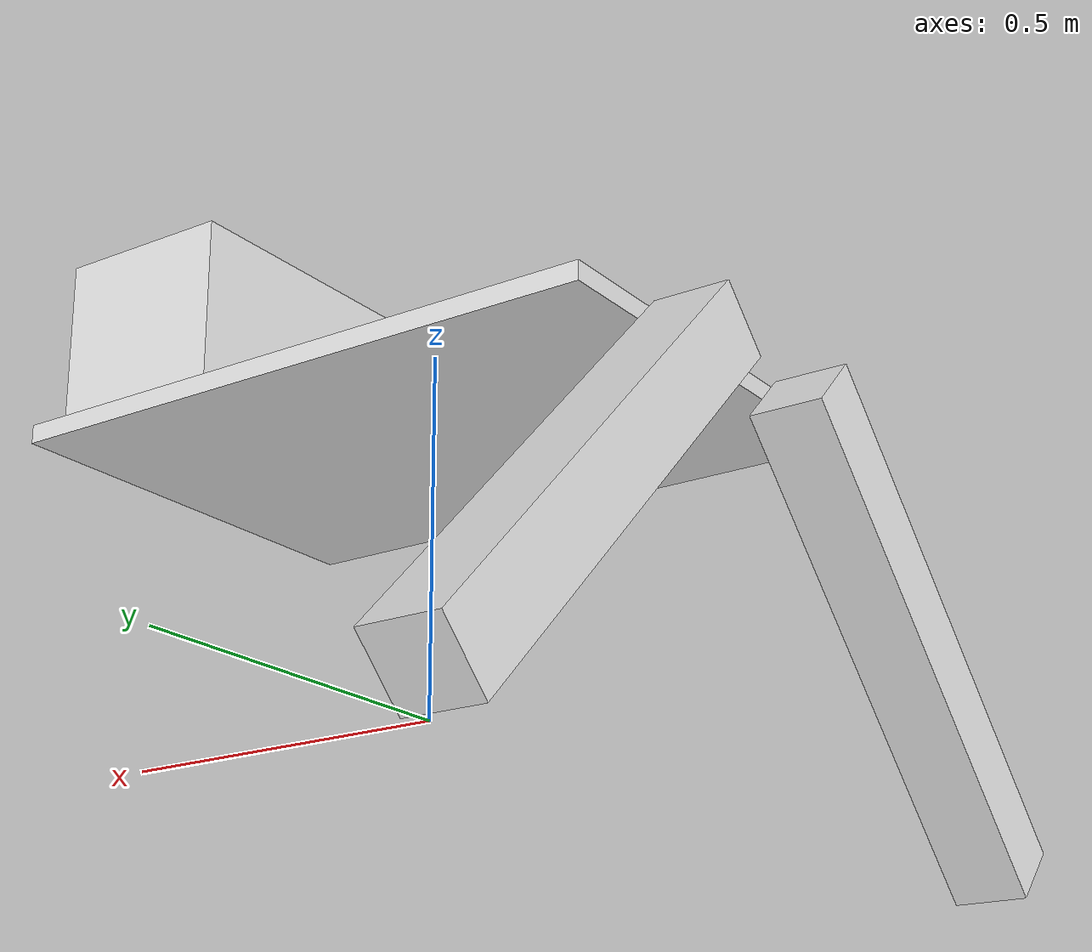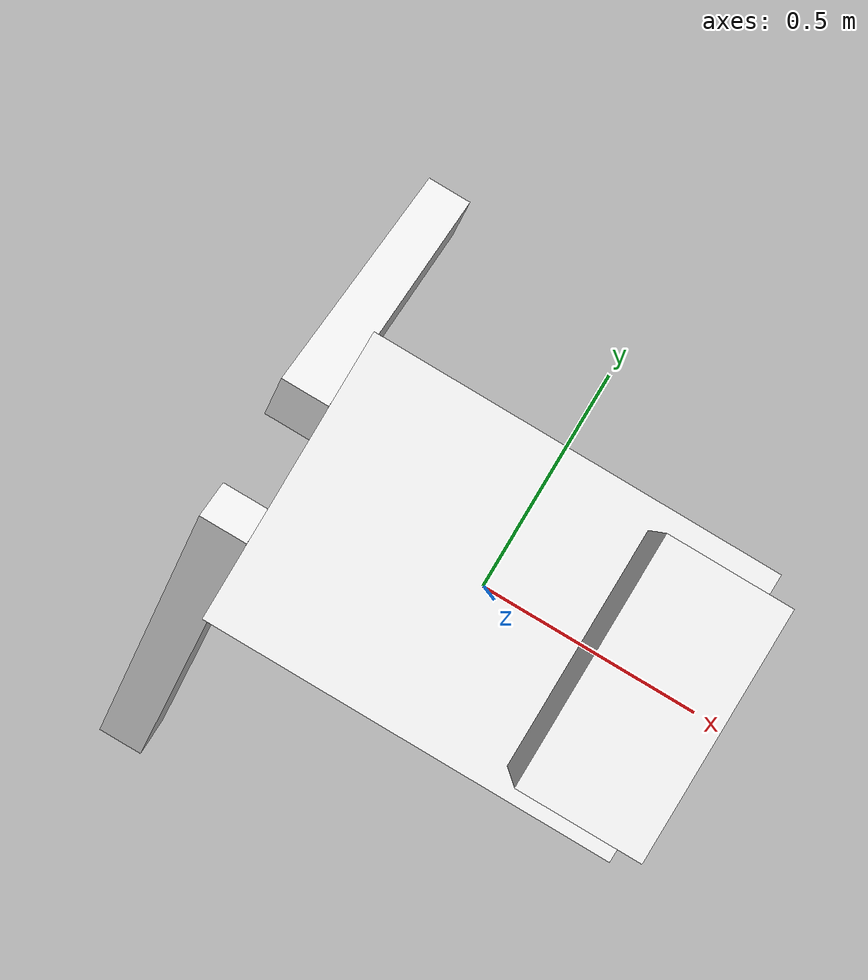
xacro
<?xml version="1.0"?>
<!-- Revolute-Revolute Manipulator -->
<robot name="537_base" xmlns:xacro="http://www.ros.org/wiki/xacro">

  <!-- Constants for robot dimensions -->
  <xacro:property name="PI" value="3.1415926535897931"/>

    <!-- collision box for flat top of rover  -->
  <xacro:property name="flattopwidth" value=".6096" />
  <xacro:property name="flattoplength" value=".8636" />
  <xacro:property name="flattopheight" value="0.0254" />
  <xacro:property name="flattop_offground" value="0.37465" />

    <!-- collision box for Power Box of rover  -->
  <xacro:property name="boxwidth" value="0.25" />
  <xacro:property name="boxlength" value="0.5" />
  <xacro:property name="boxheight" value="0.25" />

    <!-- collision box for Back Frok of rover  -->
  <xacro:property name="bforkwidth" value="0.1" />
  <xacro:property name="bforklength" value="0.75" />
  <xacro:property name="bforkheight" value="0.1" />

  <!-- Import all Gazebo-customization elements, including Gazebo colors -->
  <xacro:include filename="$(find hal_description)/urdf/hal.gazebo" />
  <!-- Import Rviz colors -->
  <xacro:include filename="$(find hal_description)/urdf/materials.xacro" />

  <!-- Used for fixing robot to Gazebo 'base_link' -->

  <link name="base_link"/>

  <joint name="fixed" type="fixed">
    <parent link="base_link"/>
    <child link="base1"/>
  </joint>

  <!-- Base Link -->
  <link name="base1">

    <visual>
      <origin xyz="0 0 ${flattop_offground + (1/2)*flattopheight}" rpy="0 0 0"/>
        <geometry>
	       <box size="${flattoplength} ${flattopwidth} ${flattopheight}"/>
        </geometry>
      <material name="white"/>
    </visual>
    <collision>
      <origin xyz="0 0 ${flattop_offground + (1/2)*flattopheight}" rpy="0 0 0"/>
        <geometry>
	       <box size="${flattoplength} ${flattopwidth} ${flattopheight}"/>
        </geometry>
      <material name="white"/>
    </collision>

  </link>

   <joint name="topplate_to_box" type="fixed">
    <parent link="base1"/>
    <child link="box1"/>
    <origin xyz="${0.5*flattoplength} 0 ${flattop_offground + flattopheight}"/>
  </joint>

    <!-- Box Link -->
  <link name="box1">

    <visual>
      <origin xyz="${-0.5*boxwidth} 0 ${(1/2)*boxheight}" rpy="0 0 0"/>
        <geometry>
         <box size="${boxwidth} ${boxlength} ${boxheight}"/>
        </geometry>
      <material name="white"/>
    </visual>
    <collision>
      <origin xyz="${-0.5*boxwidth} 0 ${(1/2)*boxheight}" rpy="0 0 0"/>
        <geometry>
         <box size="${boxwidth} ${boxlength} ${boxheight}"/>
        </geometry>
      <material name="white"/>
    </collision>

  </link>

<!-- Joint from top plate to back fork -->
   <joint name="topplate_to_frontfork1" type="fixed">
    <parent link="base1"/>
    <child link="fork1"/>
    <origin xyz="${-0.5*flattoplength} 0 ${flattop_offground + flattopheight}"/>
  </joint>

    <!-- Back Fork Link -->
  <link name="fork1">

    <visual>
      <origin xyz="${-bforkwidth/2} ${0.5*bforklength} ${-0.771*bforklength/2}" rpy="${-45*PI/180} 0 0"/>
        <geometry>
         <box size="${bforkwidth} ${bforklength} ${bforkheight}"/>
        </geometry>
      <material name="white"/>
    </visual>
    <collision>
      <origin xyz="${-bforkwidth/2} ${0.5*bforklength} ${-0.771*bforklength/2}" rpy="${-45*PI/180} 0 0"/>
        <geometry>
         <box size="${bforkwidth} ${bforklength} ${bforkheight}"/>
        </geometry>
      <material name="white"/>
    </collision>
  </link>

<!-- Joint from top plate to back fork -->
   <joint name="topplate_to_frontfork2" type="fixed">
    <parent link="base1"/>
    <child link="fork2"/>
    <origin xyz="${-0.5*flattoplength} 0 ${flattop_offground + flattopheight}"/>
  </joint>

<!-- Back Fork Link -->
  <link name="fork2">

    <visual>
      <origin xyz="${-bforkwidth/2} ${-0.5*bforklength} ${-0.771*bforklength/2}" rpy="${45*PI/180} 0 0"/>
        <geometry>
         <box size="${bforkwidth} ${bforklength} ${bforkheight}"/>
        </geometry>
      <material name="white"/>
    </visual>
    <collision>
      <origin xyz="${-bforkwidth/2} ${-0.5*bforklength} ${-0.771*bforklength/2}" rpy="${45*PI/180} 0 0"/>
        <geometry>
         <box size="${bforkwidth} ${bforklength} ${bforkheight}"/>
        </geometry>
      <material name="white"/>
    </collision>

  </link>

<!-- Joint from top plate to right front fork -->
<!-- Back Fork Link -->

  <!-- Turret-->

  <!-- Turret Box -->

</robot>
